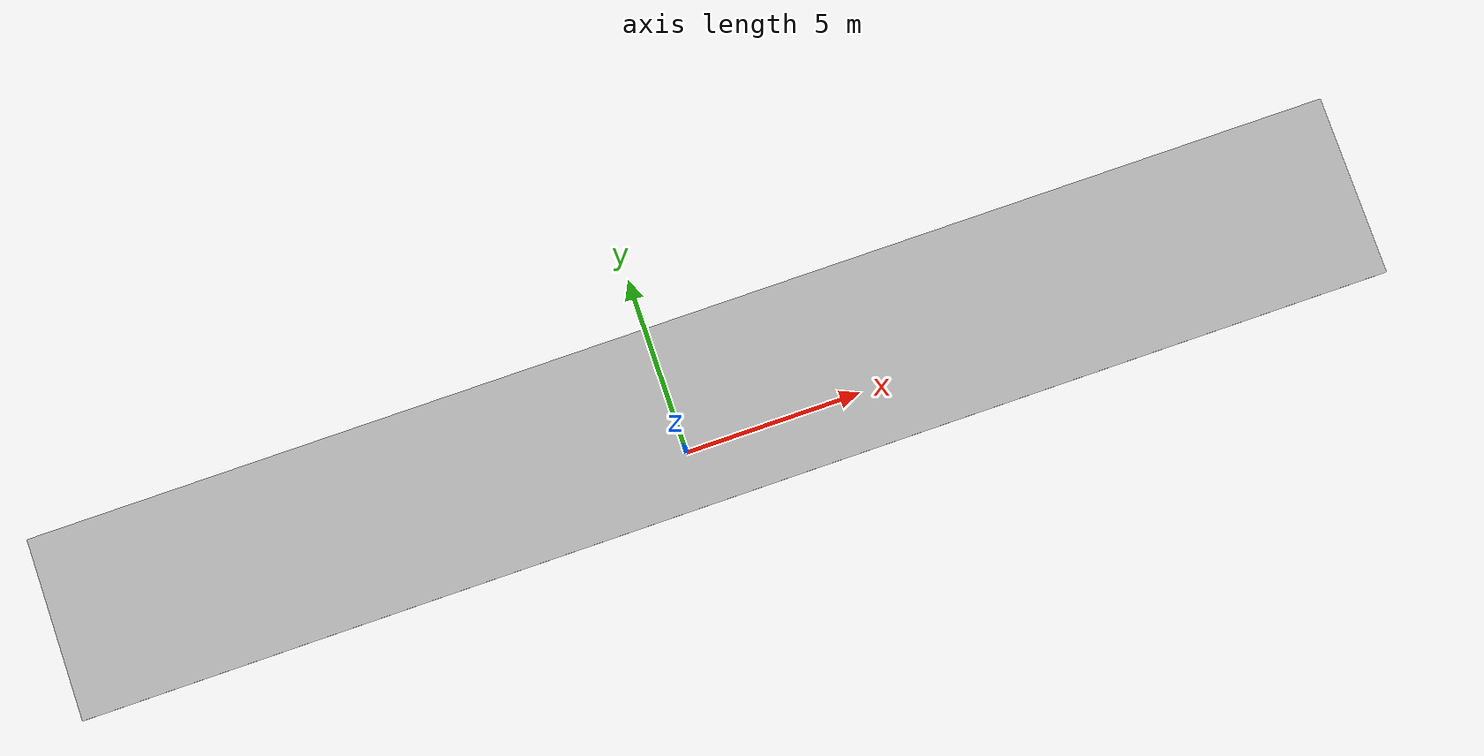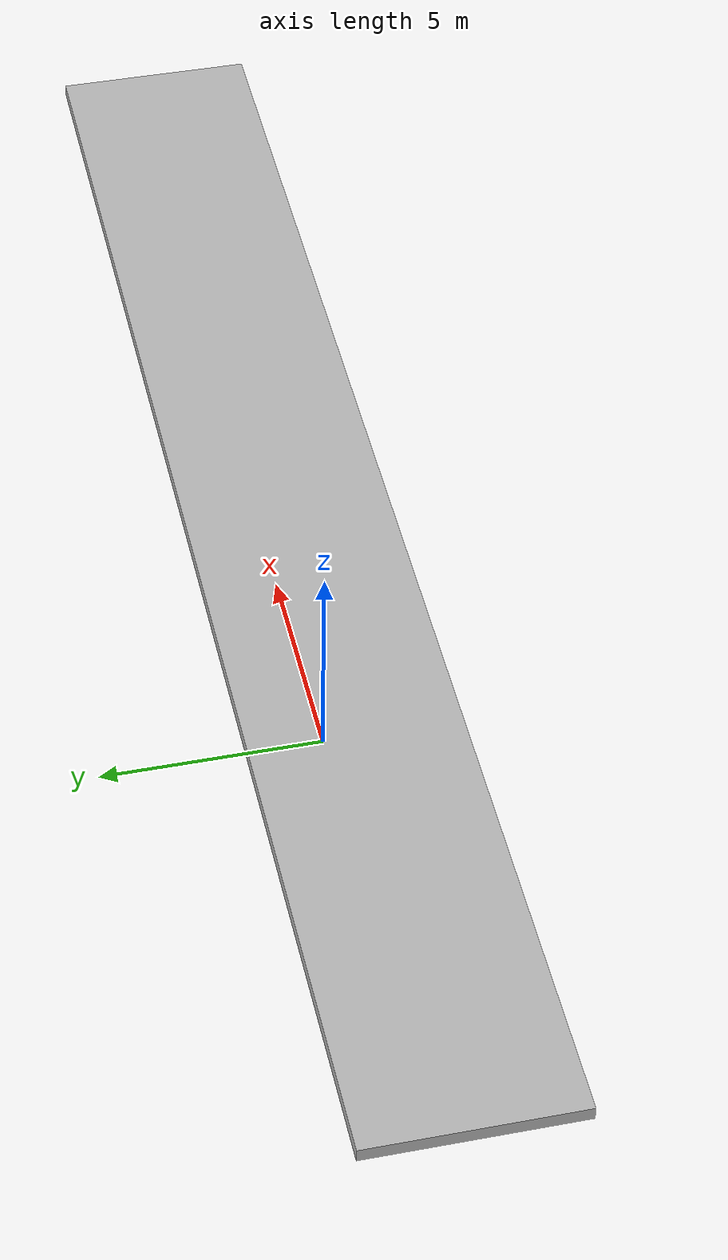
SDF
<?xml version='1.0' ?>
<sdf version="1.6">
    <model name="Road">
        <static>false</static>
        <link name="link">
            <collision name="collision">
                <pose>0 0 5 0 0 0</pose>
                <geometry>
                    <mesh>
                        <uri>meshes/road.dae</uri>
                        <scale>1 1 1</scale> <!-- Add scale here -->
                    </mesh>
                </geometry>
            </collision>
            <visual name="visual">
                <pose>0 0 5 0 0 0</pose>
                <geometry>
                    <mesh>
                        <uri>meshes/road.dae</uri>
                        <scale>1 1 1</scale> <!-- Add scale here -->
                    </mesh>
                </geometry>
            </visual>
        </link>
    </model>
</sdf>
